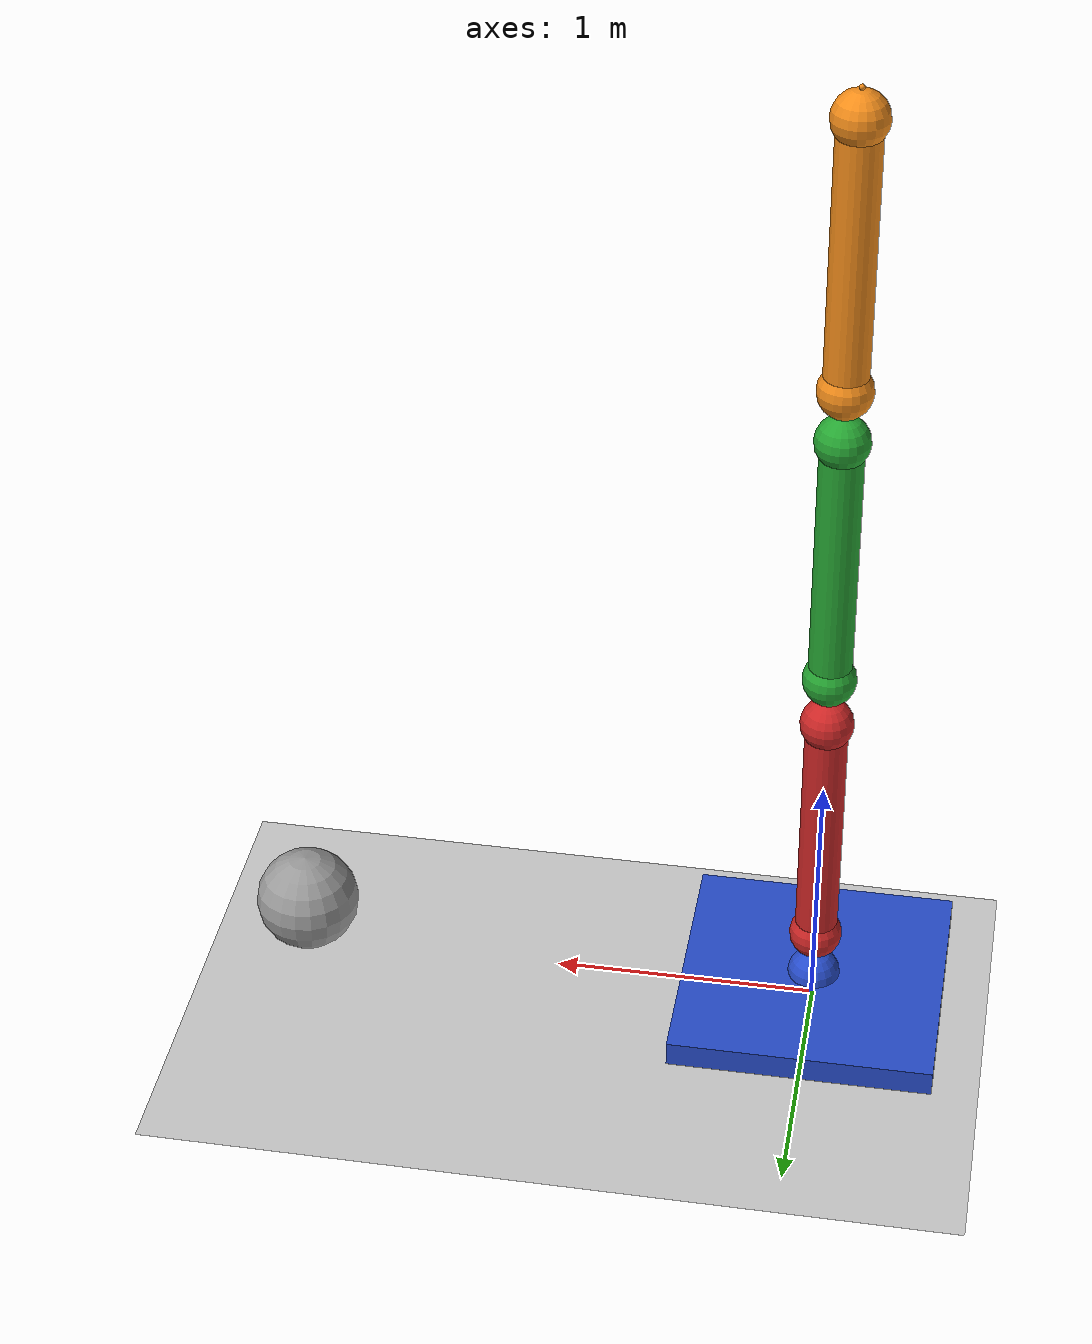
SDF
<?xml version="1.0" ?>
<sdf version="1.6">
  <world name="default">
    <include>
      <uri>model://ground_plane</uri>
    </include>

    <include>
      <uri>model://sun</uri>
    </include>

    <!-- reference to your plugin -->
    <plugin name="gazebo_tutorials" filename="libhello_world_plugin.so"/>

    <model name="6dof_arm">
      <pose>0 0 0.85 0 0 0</pose>
      <include>
       <uri>model://6dof_arm</uri>
      </include>

      <!-- Attach the plugin to this model -->
      <plugin name="6dof_arm_controller" filename="libhello_arm_plugin.so">
      </plugin>
    </model>

    <model name='unit_sphere_0'>
      <pose frame=''>2 0 0.2 0 0 0</pose>
      <link name='link'>
        <inertial>
          <mass>0.1</mass>
          <inertia>
            <ixx>0.1</ixx>
            <ixy>0</ixy>
            <ixz>0</ixz>
            <iyy>0.1</iyy>
            <iyz>0</iyz>
            <izz>0.1</izz>
          </inertia>
        </inertial>
        <collision name='collision'>
          <geometry>
            <sphere>
              <radius>0.2</radius>
            </sphere>
          </geometry>
          <max_contacts>10</max_contacts>
          <surface>
            <contact>
              <ode/>
            </contact>
            <bounce/>
            <friction>
              <torsional>
                <ode/>
              </torsional>
              <ode/>
            </friction>
          </surface>
        </collision>
        <visual name='visual'>
          <geometry>
            <sphere>
              <radius>0.2</radius>
            </sphere>
          </geometry>
          <material>
            <script>
              <name>Gazebo/Grey</name>
              <uri>file://media/materials/scripts/gazebo.material</uri>
            </script>
          </material>
        </visual>
        <self_collide>0</self_collide>
        <kinematic>0</kinematic>
        <gravity>1</gravity>
      </link>
    </model>

  </world>
</sdf>

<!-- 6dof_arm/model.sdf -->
<sdf version='1.6'>
  <model name='6dof_arm'>
    <link name='link_1'>
      <pose frame=''>-0 0 -0.7875 0 -0 0</pose>
      <inertial>
        <mass>150</mass>
        <inertia>
          <ixx>150</ixx>
          <ixy>0</ixy>
          <ixz>0</ixz>
          <iyy>150</iyy>
          <iyz>0</iyz>
          <izz>150</izz>
        </inertia>
        <pose frame=''>0 0 0 0 -0 0</pose>
      </inertial>
      <self_collide>1</self_collide>
      <kinematic>0</kinematic>
      <visual name='visual'>
        <pose frame=''>0 0 0 0 -0 0</pose>
        <geometry>
          <box>
            <size>1 1 0.1</size>
          </box>
        </geometry>
        <material>
          <lighting>1</lighting>
          <script>
            <uri>file://media/materials/scripts/gazebo.material</uri>
            <name>Gazebo/Blue</name>
          </script>
          <ambient>0 0 1 1</ambient>
          <diffuse>0.7 0.7 0.7 1</diffuse>
          <specular>0.01 0.01 0.01 1</specular>
          <emissive>0 0 0 1</emissive>
          <shader type='vertex'>
            <normal_map>__default__</normal_map>
          </shader>
        </material>
        <cast_shadows>1</cast_shadows>
        <transparency>0</transparency>
      </visual>
      <collision name='collision'>
        <laser_retro>0</laser_retro>
        <max_contacts>10</max_contacts>
        <pose frame=''>0 0 0 0 -0 0</pose>
        <geometry>
          <box>
            <size>1 1 0.1</size>
          </box>
        </geometry>
        <surface>
          <friction>
            <ode>
              <mu>1</mu>
              <mu2>1</mu2>
              <fdir1>0 0 0</fdir1>
              <slip1>0</slip1>
              <slip2>0</slip2>
            </ode>
            <torsional>
              <coefficient>1</coefficient>
              <patch_radius>0</patch_radius>
              <surface_radius>0</surface_radius>
              <use_patch_radius>1</use_patch_radius>
              <ode>
                <slip>0</slip>
              </ode>
            </torsional>
          </friction>
          <bounce>
            <restitution_coefficient>0</restitution_coefficient>
            <threshold>1e+06</threshold>
          </bounce>
          <contact>
            <collide_without_contact>0</collide_without_contact>
            <collide_without_contact_bitmask>1</collide_without_contact_bitmask>
            <collide_bitmask>1</collide_bitmask>
            <ode>
              <soft_cfm>0</soft_cfm>
              <soft_erp>0.2</soft_erp>
              <kp>1e+13</kp>
              <kd>1</kd>
              <max_vel>0.01</max_vel>
              <min_depth>0</min_depth>
            </ode>
            <bullet>
              <split_impulse>1</split_impulse>
              <split_impulse_penetration_threshold>-0.01</split_impulse_penetration_threshold>
              <soft_cfm>0</soft_cfm>
              <soft_erp>0.2</soft_erp>
              <kp>1e+13</kp>
              <kd>1</kd>
            </bullet>
          </contact>
        </surface>
      </collision>
    </link>
    <link name='link_3'>
      <pose frame=''>-0 -0 -0.5375 0 -0 0</pose>
      <inertial>
        <mass>0.1</mass>
        <inertia>
          <ixx>0.1</ixx>
          <ixy>0</ixy>
          <ixz>0</ixz>
          <iyy>0.1</iyy>
          <iyz>0</iyz>
          <izz>0.1</izz>
        </inertia>
        <pose frame=''>0 0 0 0 -0 0</pose>
      </inertial>
      <self_collide>1</self_collide>
      <kinematic>0</kinematic>
      <visual name='visual_1'>
        <pose frame=''>0 0 0.5 0 -0 0</pose>
        <geometry>
          <cylinder>
            <radius>0.08</radius>
            <length>1</length>
          </cylinder>
        </geometry>
        <material>
          <lighting>1</lighting>
          <script>
            <uri>file://media/materials/scripts/gazebo.material</uri>
            <name>Gazebo/Red</name>
          </script>
          <ambient>1 0 0 1</ambient>
          <diffuse>0.7 0.7 0.7 1</diffuse>
          <specular>0.01 0.01 0.01 1</specular>
          <emissive>0 0 0 1</emissive>
          <shader type='vertex'>
            <normal_map>__default__</normal_map>
          </shader>
        </material>
        <cast_shadows>1</cast_shadows>
        <transparency>0</transparency>
      </visual>
      <visual name='visual'>
        <pose frame=''>0 0 0 0 -0 0</pose>
        <geometry>
          <sphere>
            <radius>0.1</radius>
          </sphere>
        </geometry>
        <material>
          <lighting>1</lighting>
          <script>
            <uri>file://media/materials/scripts/gazebo.material</uri>
            <name>Gazebo/Red</name>
          </script>
          <ambient>1 0 0 1</ambient>
          <diffuse>0.7 0.7 0.7 1</diffuse>
          <specular>0.01 0.01 0.01 1</specular>
          <emissive>0 0 0 1</emissive>
          <shader type='vertex'>
            <normal_map>__default__</normal_map>
          </shader>
        </material>
        <cast_shadows>1</cast_shadows>
        <transparency>0</transparency>
      </visual>
      <collision name='collision_1'>
        <laser_retro>0</laser_retro>
        <max_contacts>10</max_contacts>
        <pose frame=''>0 0 0.5 0 -0 0</pose>
        <geometry>
          <cylinder>
            <radius>0.08</radius>
            <length>1</length>
          </cylinder>
        </geometry>
        <surface>
          <friction>
            <ode>
              <mu>1</mu>
              <mu2>1</mu2>
              <fdir1>0 0 0</fdir1>
              <slip1>0</slip1>
              <slip2>0</slip2>
            </ode>
            <torsional>
              <coefficient>1</coefficient>
              <patch_radius>0</patch_radius>
              <surface_radius>0</surface_radius>
              <use_patch_radius>1</use_patch_radius>
              <ode>
                <slip>0</slip>
              </ode>
            </torsional>
          </friction>
          <bounce>
            <restitution_coefficient>0</restitution_coefficient>
            <threshold>1e+06</threshold>
          </bounce>
          <contact>
            <collide_without_contact>0</collide_without_contact>
            <collide_without_contact_bitmask>1</collide_without_contact_bitmask>
            <collide_bitmask>1</collide_bitmask>
            <ode>
              <soft_cfm>0</soft_cfm>
              <soft_erp>0.2</soft_erp>
              <kp>1e+13</kp>
              <kd>1</kd>
              <max_vel>0.01</max_vel>
              <min_depth>0</min_depth>
            </ode>
            <bullet>
              <split_impulse>1</split_impulse>
              <split_impulse_penetration_threshold>-0.01</split_impulse_penetration_threshold>
              <soft_cfm>0</soft_cfm>
              <soft_erp>0.2</soft_erp>
              <kp>1e+13</kp>
              <kd>1</kd>
            </bullet>
          </contact>
        </surface>
      </collision>
      <collision name='collision'>
        <laser_retro>0</laser_retro>
        <max_contacts>10</max_contacts>
        <pose frame=''>0 0 0 0 -0 0</pose>
        <geometry>
          <sphere>
            <radius>0.1</radius>
          </sphere>
        </geometry>
        <surface>
          <friction>
            <ode>
              <mu>1</mu>
              <mu2>1</mu2>
              <fdir1>0 0 0</fdir1>
              <slip1>0</slip1>
              <slip2>0</slip2>
            </ode>
            <torsional>
              <coefficient>1</coefficient>
              <patch_radius>0</patch_radius>
              <surface_radius>0</surface_radius>
              <use_patch_radius>1</use_patch_radius>
              <ode>
                <slip>0</slip>
              </ode>
            </torsional>
          </friction>
          <bounce>
            <restitution_coefficient>0</restitution_coefficient>
            <threshold>1e+06</threshold>
          </bounce>
          <contact>
            <collide_without_contact>0</collide_without_contact>
            <collide_without_contact_bitmask>1</collide_without_contact_bitmask>
            <collide_bitmask>1</collide_bitmask>
            <ode>
              <soft_cfm>0</soft_cfm>
              <soft_erp>0.2</soft_erp>
              <kp>1e+13</kp>
              <kd>1</kd>
              <max_vel>0.01</max_vel>
              <min_depth>0</min_depth>
            </ode>
            <bullet>
              <split_impulse>1</split_impulse>
              <split_impulse_penetration_threshold>-0.01</split_impulse_penetration_threshold>
              <soft_cfm>0</soft_cfm>
              <soft_erp>0.2</soft_erp>
              <kp>1e+13</kp>
              <kd>1</kd>
            </bullet>
          </contact>
        </surface>
      </collision>
    </link>
    <link name='link_3_'>
      <pose frame=''>-0 0 -0.7375 0 -0 0</pose>
      <inertial>
        <mass>0.1</mass>
        <inertia>
          <ixx>0.1</ixx>
          <ixy>0</ixy>
          <ixz>0</ixz>
          <iyy>0.1</iyy>
          <iyz>0</iyz>
          <izz>0.1</izz>
        </inertia>
        <pose frame=''>0 0 0 0 -0 0</pose>
      </inertial>
      <self_collide>1</self_collide>
      <kinematic>0</kinematic>
      <visual name='visual'>
        <pose frame=''>0 0 0 0 -0 0</pose>
        <geometry>
          <sphere>
            <radius>0.1</radius>
          </sphere>
        </geometry>
        <material>
          <lighting>1</lighting>
          <script>
            <uri>file://media/materials/scripts/gazebo.material</uri>
            <name>Gazebo/Blue</name>
          </script>
          <ambient>0 0 1 1</ambient>
          <diffuse>0.7 0.7 0.7 1</diffuse>
          <specular>0.01 0.01 0.01 1</specular>
          <emissive>0 0 0 1</emissive>
          <shader type='vertex'>
            <normal_map>__default__</normal_map>
          </shader>
        </material>
        <cast_shadows>1</cast_shadows>
        <transparency>0</transparency>
      </visual>
      <collision name='collision'>
        <laser_retro>0</laser_retro>
        <max_contacts>10</max_contacts>
        <pose frame=''>0 0 0 0 -0 0</pose>
        <geometry>
          <sphere>
            <radius>0.1</radius>
          </sphere>
        </geometry>
        <surface>
          <friction>
            <ode>
              <mu>1</mu>
              <mu2>1</mu2>
              <fdir1>0 0 0</fdir1>
              <slip1>0</slip1>
              <slip2>0</slip2>
            </ode>
            <torsional>
              <coefficient>1</coefficient>
              <patch_radius>0</patch_radius>
              <surface_radius>0</surface_radius>
              <use_patch_radius>1</use_patch_radius>
              <ode>
                <slip>0</slip>
              </ode>
            </torsional>
          </friction>
          <bounce>
            <restitution_coefficient>0</restitution_coefficient>
            <threshold>1e+06</threshold>
          </bounce>
          <contact>
            <collide_without_contact>0</collide_without_contact>
            <collide_without_contact_bitmask>1</collide_without_contact_bitmask>
            <collide_bitmask>1</collide_bitmask>
            <ode>
              <soft_cfm>0</soft_cfm>
              <soft_erp>0.2</soft_erp>
              <kp>1e+13</kp>
              <kd>1</kd>
              <max_vel>0.01</max_vel>
              <min_depth>0</min_depth>
            </ode>
            <bullet>
              <split_impulse>1</split_impulse>
              <split_impulse_penetration_threshold>-0.01</split_impulse_penetration_threshold>
              <soft_cfm>0</soft_cfm>
              <soft_erp>0.2</soft_erp>
              <kp>1e+13</kp>
              <kd>1</kd>
            </bullet>
          </contact>
        </surface>
      </collision>
    </link>
    <link name='link_4'>
      <pose frame=''>-0 0 0.6625 0 -0 0</pose>
      <inertial>
        <mass>0.1</mass>
        <inertia>
          <ixx>0.1</ixx>
          <ixy>0</ixy>
          <ixz>0</ixz>
          <iyy>0.1</iyy>
          <iyz>0</iyz>
          <izz>0.1</izz>
        </inertia>
        <pose frame=''>0 0 0 0 -0 0</pose>
      </inertial>
      <self_collide>1</self_collide>
      <kinematic>0</kinematic>
      <visual name='visual'>
        <pose frame=''>0 0 0 0 -0 0</pose>
        <geometry>
          <sphere>
            <radius>0.1</radius>
          </sphere>
        </geometry>
        <material>
          <lighting>1</lighting>
          <script>
            <uri>file://media/materials/scripts/gazebo.material</uri>
            <name>Gazebo/Green</name>
          </script>
          <ambient>0 1 0 1</ambient>
          <diffuse>0.7 0.7 0.7 1</diffuse>
          <specular>0.01 0.01 0.01 1</specular>
          <emissive>0 0 0 1</emissive>
          <shader type='vertex'>
            <normal_map>__default__</normal_map>
          </shader>
        </material>
        <cast_shadows>1</cast_shadows>
        <transparency>0</transparency>
      </visual>
      <visual name='visual_1'>
        <pose frame=''>0 0 0.5 0 -0 0</pose>
        <geometry>
          <cylinder>
            <radius>0.08</radius>
            <length>1</length>
          </cylinder>
        </geometry>
        <material>
          <lighting>1</lighting>
          <script>
            <uri>file://media/materials/scripts/gazebo.material</uri>
            <name>Gazebo/Green</name>
          </script>
          <ambient>0 1 0 1</ambient>
          <diffuse>0.7 0.7 0.7 1</diffuse>
          <specular>0.01 0.01 0.01 1</specular>
          <emissive>0 0 0 1</emissive>
          <shader type='vertex'>
            <normal_map>__default__</normal_map>
          </shader>
        </material>
        <cast_shadows>1</cast_shadows>
        <transparency>0</transparency>
      </visual>
      <collision name='collision'>
        <laser_retro>0</laser_retro>
        <max_contacts>10</max_contacts>
        <pose frame=''>0 0 0 0 -0 0</pose>
        <geometry>
          <sphere>
            <radius>0.1</radius>
          </sphere>
        </geometry>
        <surface>
          <friction>
            <ode>
              <mu>1</mu>
              <mu2>1</mu2>
              <fdir1>0 0 0</fdir1>
              <slip1>0</slip1>
              <slip2>0</slip2>
            </ode>
            <torsional>
              <coefficient>1</coefficient>
              <patch_radius>0</patch_radius>
              <surface_radius>0</surface_radius>
              <use_patch_radius>1</use_patch_radius>
              <ode>
                <slip>0</slip>
              </ode>
            </torsional>
          </friction>
          <bounce>
            <restitution_coefficient>0</restitution_coefficient>
            <threshold>1e+06</threshold>
          </bounce>
          <contact>
            <collide_without_contact>0</collide_without_contact>
            <collide_without_contact_bitmask>1</collide_without_contact_bitmask>
            <collide_bitmask>1</collide_bitmask>
            <ode>
              <soft_cfm>0</soft_cfm>
              <soft_erp>0.2</soft_erp>
              <kp>1e+13</kp>
              <kd>1</kd>
              <max_vel>0.01</max_vel>
              <min_depth>0</min_depth>
            </ode>
            <bullet>
              <split_impulse>1</split_impulse>
              <split_impulse_penetration_threshold>-0.01</split_impulse_penetration_threshold>
              <soft_cfm>0</soft_cfm>
              <soft_erp>0.2</soft_erp>
              <kp>1e+13</kp>
              <kd>1</kd>
            </bullet>
          </contact>
        </surface>
      </collision>
      <collision name='collision_1'>
        <laser_retro>0</laser_retro>
        <max_contacts>10</max_contacts>
        <pose frame=''>0 0 0.5 0 -0 0</pose>
        <geometry>
          <cylinder>
            <radius>0.08</radius>
            <length>1</length>
          </cylinder>
        </geometry>
        <surface>
          <friction>
            <ode>
              <mu>1</mu>
              <mu2>1</mu2>
              <fdir1>0 0 0</fdir1>
              <slip1>0</slip1>
              <slip2>0</slip2>
            </ode>
            <torsional>
              <coefficient>1</coefficient>
              <patch_radius>0</patch_radius>
              <surface_radius>0</surface_radius>
              <use_patch_radius>1</use_patch_radius>
              <ode>
                <slip>0</slip>
              </ode>
            </torsional>
          </friction>
          <bounce>
            <restitution_coefficient>0</restitution_coefficient>
            <threshold>1e+06</threshold>
          </bounce>
          <contact>
            <collide_without_contact>0</collide_without_contact>
            <collide_without_contact_bitmask>1</collide_without_contact_bitmask>
            <collide_bitmask>1</collide_bitmask>
            <ode>
              <soft_cfm>0</soft_cfm>
              <soft_erp>0.2</soft_erp>
              <kp>1e+13</kp>
              <kd>1</kd>
              <max_vel>0.01</max_vel>
              <min_depth>0</min_depth>
            </ode>
            <bullet>
              <split_impulse>1</split_impulse>
              <split_impulse_penetration_threshold>-0.01</split_impulse_penetration_threshold>
              <soft_cfm>0</soft_cfm>
              <soft_erp>0.2</soft_erp>
              <kp>1e+13</kp>
              <kd>1</kd>
            </bullet>
          </contact>
        </surface>
      </collision>
    </link>
    <link name='link_4_'>
      <pose frame=''>-0 -0 0.4625 0 -0 0</pose>
      <inertial>
        <mass>0.1</mass>
        <inertia>
          <ixx>0.1</ixx>
          <ixy>0</ixy>
          <ixz>0</ixz>
          <iyy>0.1</iyy>
          <iyz>0</iyz>
          <izz>0.1</izz>
        </inertia>
        <pose frame=''>0 0 0 0 -0 0</pose>
      </inertial>
      <self_collide>1</self_collide>
      <kinematic>0</kinematic>
      <visual name='visual'>
        <pose frame=''>0 0 0 0 -0 0</pose>
        <geometry>
          <sphere>
            <radius>0.1</radius>
          </sphere>
        </geometry>
        <material>
          <lighting>1</lighting>
          <script>
            <uri>file://media/materials/scripts/gazebo.material</uri>
            <name>Gazebo/Red</name>
          </script>
          <ambient>1 0 0 1</ambient>
          <diffuse>0.7 0.7 0.7 1</diffuse>
          <specular>0.01 0.01 0.01 1</specular>
          <emissive>0 0 0 1</emissive>
          <shader type='vertex'>
            <normal_map>__default__</normal_map>
          </shader>
        </material>
        <cast_shadows>1</cast_shadows>
        <transparency>0</transparency>
      </visual>
      <collision name='collision'>
        <laser_retro>0</laser_retro>
        <max_contacts>10</max_contacts>
        <pose frame=''>0 0 0 0 -0 0</pose>
        <geometry>
          <sphere>
            <radius>0.1</radius>
          </sphere>
        </geometry>
        <surface>
          <friction>
            <ode>
              <mu>1</mu>
              <mu2>1</mu2>
              <fdir1>0 0 0</fdir1>
              <slip1>0</slip1>
              <slip2>0</slip2>
            </ode>
            <torsional>
              <coefficient>1</coefficient>
              <patch_radius>0</patch_radius>
              <surface_radius>0</surface_radius>
              <use_patch_radius>1</use_patch_radius>
              <ode>
                <slip>0</slip>
              </ode>
            </torsional>
          </friction>
          <bounce>
            <restitution_coefficient>0</restitution_coefficient>
            <threshold>1e+06</threshold>
          </bounce>
          <contact>
            <collide_without_contact>0</collide_without_contact>
            <collide_without_contact_bitmask>1</collide_without_contact_bitmask>
            <collide_bitmask>1</collide_bitmask>
            <ode>
              <soft_cfm>0</soft_cfm>
              <soft_erp>0.2</soft_erp>
              <kp>1e+13</kp>
              <kd>1</kd>
              <max_vel>0.01</max_vel>
              <min_depth>0</min_depth>
            </ode>
            <bullet>
              <split_impulse>1</split_impulse>
              <split_impulse_penetration_threshold>-0.01</split_impulse_penetration_threshold>
              <soft_cfm>0</soft_cfm>
              <soft_erp>0.2</soft_erp>
              <kp>1e+13</kp>
              <kd>1</kd>
            </bullet>
          </contact>
        </surface>
      </collision>
    </link>
    <link name='link_5'>
      <pose frame=''>-0 -0 1.8625 0 -0 0</pose>
      <inertial>
        <mass>0.1</mass>
        <inertia>
          <ixx>0.1</ixx>
          <ixy>0</ixy>
          <ixz>0</ixz>
          <iyy>0.1</iyy>
          <iyz>0</iyz>
          <izz>0.1</izz>
        </inertia>
        <pose frame=''>0 0 0 0 -0 0</pose>
      </inertial>
      <self_collide>1</self_collide>
      <kinematic>0</kinematic>
      <visual name='visual'>
        <pose frame=''>0 0 0 0 -0 0</pose>
        <geometry>
          <sphere>
            <radius>0.1</radius>
          </sphere>
        </geometry>
        <material>
          <lighting>1</lighting>
          <script>
            <uri>file://media/materials/scripts/gazebo.material</uri>
            <name>Gazebo/Orange</name>
          </script>
          <ambient>1 0.7 0 1</ambient>
          <diffuse>0.7 0.7 0.7 1</diffuse>
          <specular>0.01 0.01 0.01 1</specular>
          <emissive>0 0 0 1</emissive>
          <shader type='vertex'>
            <normal_map>__default__</normal_map>
          </shader>
        </material>
        <cast_shadows>1</cast_shadows>
        <transparency>0</transparency>
      </visual>
      <visual name='visual_2'>
        <pose frame=''>0 0 1 0 -0 0</pose>
        <geometry>
          <sphere>
            <radius>0.1</radius>
          </sphere>
        </geometry>
        <material>
          <lighting>1</lighting>
          <script>
            <uri>file://media/materials/scripts/gazebo.material</uri>
            <name>Gazebo/Orange</name>
          </script>
          <ambient>1 0.7 0 1</ambient>
          <diffuse>0.7 0.7 0.7 1</diffuse>
          <specular>0.01 0.01 0.01 1</specular>
          <emissive>0 0 0 1</emissive>
          <shader type='vertex'>
            <normal_map>__default__</normal_map>
          </shader>
        </material>
        <cast_shadows>1</cast_shadows>
        <transparency>0</transparency>
      </visual>
      <visual name='visual_1'>
        <pose frame=''>0 0 0.5 0 -0 0</pose>
        <geometry>
          <cylinder>
            <radius>0.08</radius>
            <length>1</length>
          </cylinder>
        </geometry>
        <material>
          <lighting>1</lighting>
          <script>
            <uri>file://media/materials/scripts/gazebo.material</uri>
            <name>Gazebo/Orange</name>
          </script>
          <ambient>1 0.7 0 1</ambient>
          <diffuse>0.7 0.7 0.7 1</diffuse>
          <specular>0.01 0.01 0.01 1</specular>
          <emissive>0 0 0 1</emissive>
          <shader type='vertex'>
            <normal_map>__default__</normal_map>
          </shader>
        </material>
        <cast_shadows>1</cast_shadows>
        <transparency>0</transparency>
      </visual>
      <collision name='collision'>
        <laser_retro>0</laser_retro>
        <max_contacts>10</max_contacts>
        <pose frame=''>0 0 0 0 -0 0</pose>
        <geometry>
          <sphere>
            <radius>0.1</radius>
          </sphere>
        </geometry>
        <surface>
          <friction>
            <ode>
              <mu>1</mu>
              <mu2>1</mu2>
              <fdir1>0 0 0</fdir1>
              <slip1>0</slip1>
              <slip2>0</slip2>
            </ode>
            <torsional>
              <coefficient>1</coefficient>
              <patch_radius>0</patch_radius>
              <surface_radius>0</surface_radius>
              <use_patch_radius>1</use_patch_radius>
              <ode>
                <slip>0</slip>
              </ode>
            </torsional>
          </friction>
          <bounce>
            <restitution_coefficient>0</restitution_coefficient>
            <threshold>1e+06</threshold>
          </bounce>
          <contact>
            <collide_without_contact>0</collide_without_contact>
            <collide_without_contact_bitmask>1</collide_without_contact_bitmask>
            <collide_bitmask>1</collide_bitmask>
            <ode>
              <soft_cfm>0</soft_cfm>
              <soft_erp>0.2</soft_erp>
              <kp>1e+13</kp>
              <kd>1</kd>
              <max_vel>0.01</max_vel>
              <min_depth>0</min_depth>
            </ode>
            <bullet>
              <split_impulse>1</split_impulse>
              <split_impulse_penetration_threshold>-0.01</split_impulse_penetration_threshold>
              <soft_cfm>0</soft_cfm>
              <soft_erp>0.2</soft_erp>
              <kp>1e+13</kp>
              <kd>1</kd>
            </bullet>
          </contact>
        </surface>
      </collision>
      <collision name='collision_1'>
        <laser_retro>0</laser_retro>
        <max_contacts>10</max_contacts>
        <pose frame=''>0 0 0.5 0 -0 0</pose>
        <geometry>
          <cylinder>
            <radius>0.08</radius>
            <length>1</length>
          </cylinder>
        </geometry>
        <surface>
          <friction>
            <ode>
              <mu>1</mu>
              <mu2>1</mu2>
              <fdir1>0 0 0</fdir1>
              <slip1>0</slip1>
              <slip2>0</slip2>
            </ode>
            <torsional>
              <coefficient>1</coefficient>
              <patch_radius>0</patch_radius>
              <surface_radius>0</surface_radius>
              <use_patch_radius>1</use_patch_radius>
              <ode>
                <slip>0</slip>
              </ode>
            </torsional>
          </friction>
          <bounce>
            <restitution_coefficient>0</restitution_coefficient>
            <threshold>1e+06</threshold>
          </bounce>
          <contact>
            <collide_without_contact>0</collide_without_contact>
            <collide_without_contact_bitmask>1</collide_without_contact_bitmask>
            <collide_bitmask>1</collide_bitmask>
            <ode>
              <soft_cfm>0</soft_cfm>
              <soft_erp>0.2</soft_erp>
              <kp>1e+13</kp>
              <kd>1</kd>
              <max_vel>0.01</max_vel>
              <min_depth>0</min_depth>
            </ode>
            <bullet>
              <split_impulse>1</split_impulse>
              <split_impulse_penetration_threshold>-0.01</split_impulse_penetration_threshold>
              <soft_cfm>0</soft_cfm>
              <soft_erp>0.2</soft_erp>
              <kp>1e+13</kp>
              <kd>1</kd>
            </bullet>
          </contact>
        </surface>
      </collision>
      <collision name='collision_2'>
        <laser_retro>0</laser_retro>
        <max_contacts>10</max_contacts>
        <pose frame=''>0 0 1 0 -0 0</pose>
        <geometry>
          <sphere>
            <radius>0.1</radius>
          </sphere>
        </geometry>
        <surface>
          <friction>
            <ode>
              <mu>1</mu>
              <mu2>1</mu2>
              <fdir1>0 0 0</fdir1>
              <slip1>0</slip1>
              <slip2>0</slip2>
            </ode>
            <torsional>
              <coefficient>1</coefficient>
              <patch_radius>0</patch_radius>
              <surface_radius>0</surface_radius>
              <use_patch_radius>1</use_patch_radius>
              <ode>
                <slip>0</slip>
              </ode>
            </torsional>
          </friction>
          <bounce>
            <restitution_coefficient>0</restitution_coefficient>
            <threshold>1e+06</threshold>
          </bounce>
          <contact>
            <collide_without_contact>0</collide_without_contact>
            <collide_without_contact_bitmask>1</collide_without_contact_bitmask>
            <collide_bitmask>1</collide_bitmask>
            <ode>
              <soft_cfm>0</soft_cfm>
              <soft_erp>0.2</soft_erp>
              <kp>1e+13</kp>
              <kd>1</kd>
              <max_vel>0.01</max_vel>
              <min_depth>0</min_depth>
            </ode>
            <bullet>
              <split_impulse>1</split_impulse>
              <split_impulse_penetration_threshold>-0.01</split_impulse_penetration_threshold>
              <soft_cfm>0</soft_cfm>
              <soft_erp>0.2</soft_erp>
              <kp>1e+13</kp>
              <kd>1</kd>
            </bullet>
          </contact>
        </surface>
      </collision>
    </link>
    <link name='link_5_'>
      <pose frame=''>0 0 1.6625 0 -0 0</pose>
      <inertial>
        <mass>0.1</mass>
        <inertia>
          <ixx>0.1</ixx>
          <ixy>0</ixy>
          <ixz>0</ixz>
          <iyy>0.1</iyy>
          <iyz>0</iyz>
          <izz>0.1</izz>
        </inertia>
        <pose frame=''>0 0 0 0 -0 0</pose>
      </inertial>
      <self_collide>1</self_collide>
      <kinematic>0</kinematic>
      <visual name='visual'>
        <pose frame=''>0 0 0 0 -0 0</pose>
        <geometry>
          <sphere>
            <radius>0.1</radius>
          </sphere>
        </geometry>
        <material>
          <lighting>1</lighting>
          <script>
            <uri>file://media/materials/scripts/gazebo.material</uri>
            <name>Gazebo/Green</name>
          </script>
          <ambient>0 1 0 1</ambient>
          <diffuse>0.7 0.7 0.7 1</diffuse>
          <specular>0.01 0.01 0.01 1</specular>
          <emissive>0 0 0 1</emissive>
          <shader type='vertex'>
            <normal_map>__default__</normal_map>
          </shader>
        </material>
        <cast_shadows>1</cast_shadows>
        <transparency>0</transparency>
      </visual>
      <collision name='collision'>
        <laser_retro>0</laser_retro>
        <max_contacts>10</max_contacts>
        <pose frame=''>0 0 0 0 -0 0</pose>
        <geometry>
          <sphere>
            <radius>0.1</radius>
          </sphere>
        </geometry>
        <surface>
          <friction>
            <ode>
              <mu>1</mu>
              <mu2>1</mu2>
              <fdir1>0 0 0</fdir1>
              <slip1>0</slip1>
              <slip2>0</slip2>
            </ode>
            <torsional>
              <coefficient>1</coefficient>
              <patch_radius>0</patch_radius>
              <surface_radius>0</surface_radius>
              <use_patch_radius>1</use_patch_radius>
              <ode>
                <slip>0</slip>
              </ode>
            </torsional>
          </friction>
          <bounce>
            <restitution_coefficient>0</restitution_coefficient>
            <threshold>1e+06</threshold>
          </bounce>
          <contact>
            <collide_without_contact>0</collide_without_contact>
            <collide_without_contact_bitmask>1</collide_without_contact_bitmask>
            <collide_bitmask>1</collide_bitmask>
            <ode>
              <soft_cfm>0</soft_cfm>
              <soft_erp>0.2</soft_erp>
              <kp>1e+13</kp>
              <kd>1</kd>
              <max_vel>0.01</max_vel>
              <min_depth>0</min_depth>
            </ode>
            <bullet>
              <split_impulse>1</split_impulse>
              <split_impulse_penetration_threshold>-0.01</split_impulse_penetration_threshold>
              <soft_cfm>0</soft_cfm>
              <soft_erp>0.2</soft_erp>
              <kp>1e+13</kp>
              <kd>1</kd>
            </bullet>
          </contact>
        </surface>
      </collision>
    </link>
    <link name='link_uc'>
      <pose frame=''>0 0 2.97 0 0 0</pose>
      <inertial>
        <mass>0.1</mass>
        <inertia>
          <ixx>0.1</ixx>
          <ixy>0</ixy>
          <ixz>0</ixz>
          <iyy>0.1</iyy>
          <iyz>0</iyz>
          <izz>0.1</izz>
        </inertia>
        <pose frame=''>0 0 0 0 -0 0</pose>
      </inertial>
      <self_collide>1</self_collide>
      <kinematic>0</kinematic>
      <visual name='visual'>
        <pose frame=''>0 0 0 0 -0 0</pose>
        <geometry>
          <sphere>
            <radius>0.01</radius>
          </sphere>
        </geometry>
        <material>
          <lighting>1</lighting>
          <script>
            <uri>file://media/materials/scripts/gazebo.material</uri>
            <name>Gazebo/Orange</name>
          </script>
          <ambient>1 0.7 0 1</ambient>
          <diffuse>0.7 0.7 0.7 1</diffuse>
          <specular>0.01 0.01 0.01 1</specular>
          <emissive>0 0 0 1</emissive>
          <shader type='vertex'>
            <normal_map>__default__</normal_map>
          </shader>
        </material>
        <cast_shadows>1</cast_shadows>
        <transparency>0</transparency>
      </visual>
      <collision name='collision'>
        <laser_retro>0</laser_retro>
        <max_contacts>10</max_contacts>
        <pose frame=''>0 0 0 0 -0 0</pose>
        <geometry>
          <sphere>
            <radius>0.01</radius>
          </sphere>
        </geometry>
        <surface>
          <friction>
            <ode>
              <mu>1</mu>
              <mu2>1</mu2>
              <fdir1>0 0 0</fdir1>
              <slip1>0</slip1>
              <slip2>0</slip2>
            </ode>
            <torsional>
              <coefficient>1</coefficient>
              <patch_radius>0</patch_radius>
              <surface_radius>0</surface_radius>
              <use_patch_radius>1</use_patch_radius>
              <ode>
                <slip>0</slip>
              </ode>
            </torsional>
          </friction>
          <bounce>
            <restitution_coefficient>0</restitution_coefficient>
            <threshold>1e+06</threshold>
          </bounce>
          <contact>
            <collide_without_contact>0</collide_without_contact>
            <collide_without_contact_bitmask>1</collide_without_contact_bitmask>
            <collide_bitmask>1</collide_bitmask>
            <ode>
              <soft_cfm>0</soft_cfm>
              <soft_erp>0.2</soft_erp>
              <kp>1e+13</kp>
              <kd>1</kd>
              <max_vel>0.01</max_vel>
              <min_depth>0</min_depth>
            </ode>
            <bullet>
              <split_impulse>1</split_impulse>
              <split_impulse_penetration_threshold>-0.01</split_impulse_penetration_threshold>
              <soft_cfm>0</soft_cfm>
              <soft_erp>0.2</soft_erp>
              <kp>1e+13</kp>
              <kd>1</kd>
            </bullet>
          </contact>
        </surface>
      </collision>
    </link>
    <joint name='base2' type='revolute'>
      <parent>link_3_</parent>
      <child>link_3</child>
      <pose frame=''>0 0 0 0 -0 0</pose>
      <axis>
        <xyz>0 1 0</xyz>
        <use_parent_model_frame>0</use_parent_model_frame>
        <limit>
          <lower>-1.57</lower>
          <upper>1.57</upper>
          <effort>1000000</effort>
          <velocity>-1</velocity>
        </limit>
        <dynamics>
          <spring_reference>0</spring_reference>
          <spring_stiffness>0</spring_stiffness>
          <damping>0</damping>
          <friction>0</friction>
        </dynamics>
      </axis>
      <physics>
        <ode>
          <limit>
            <cfm>0</cfm>
            <erp>0.2</erp>
          </limit>
          <suspension>
            <cfm>0</cfm>
            <erp>0.2</erp>
          </suspension>
        </ode>
      </physics>
    </joint>
    <joint name='base' type='revolute'>
      <parent>link_1</parent>
      <child>link_3_</child>
      <pose frame=''>0 0 0 0 -0 0</pose>
      <axis>
        <xyz>1 0 0</xyz>
        <use_parent_model_frame>0</use_parent_model_frame>
        <limit>
          <lower>-1</lower>
          <upper>1</upper>
          <effort>1000000</effort>
          <velocity>-1</velocity>
        </limit>
        <dynamics>
          <spring_reference>0</spring_reference>
          <spring_stiffness>0</spring_stiffness>
          <damping>0</damping>
          <friction>0</friction>
        </dynamics>
      </axis>
      <physics>
        <ode>
          <limit>
            <cfm>0</cfm>
            <erp>0.2</erp>
          </limit>
          <suspension>
            <cfm>0</cfm>
            <erp>0.2</erp>
          </suspension>
        </ode>
      </physics>
    </joint>
    <joint name='elbow2' type='revolute'>
      <parent>link_5_</parent>
      <child>link_5</child>
      <pose frame=''>0 0 0 0 -0 0</pose>
      <axis>
        <xyz>0 1 0</xyz>
        <use_parent_model_frame>0</use_parent_model_frame>
        <limit>
          <lower>-1.57</lower>
          <upper>1.57</upper>
          <effort>1000000</effort>
          <velocity>-1</velocity>
        </limit>
        <dynamics>
          <spring_reference>0</spring_reference>
          <spring_stiffness>0</spring_stiffness>
          <damping>0</damping>
          <friction>0</friction>
        </dynamics>
      </axis>
      <physics>
        <ode>
          <limit>
            <cfm>0</cfm>
            <erp>0.2</erp>
          </limit>
          <suspension>
            <cfm>0</cfm>
            <erp>0.2</erp>
          </suspension>
        </ode>
      </physics>
    </joint>
    <joint name='elbow' type='revolute'>
      <parent>link_4</parent>
      <child>link_5_</child>
      <pose frame=''>0 0 0 0 -0 0</pose>
      <axis>
        <xyz>1 0 0</xyz>
        <use_parent_model_frame>0</use_parent_model_frame>
        <limit>
          <lower>-1.57</lower>
          <upper>1.57</upper>
          <effort>1000000</effort>
          <velocity>-1</velocity>
        </limit>
        <dynamics>
          <spring_reference>0</spring_reference>
          <spring_stiffness>0</spring_stiffness>
          <damping>0</damping>
          <friction>0</friction>
        </dynamics>
      </axis>
      <physics>
        <ode>
          <limit>
            <cfm>0</cfm>
            <erp>0.2</erp>
          </limit>
          <suspension>
            <cfm>0</cfm>
            <erp>0.2</erp>
          </suspension>
        </ode>
      </physics>
    </joint>
    <joint name='shoulder2' type='revolute'>
      <parent>link_4_</parent>
      <child>link_4</child>
      <pose frame=''>0 0 0 0 -0 0</pose>
      <axis>
        <xyz>0 1 0</xyz>
        <use_parent_model_frame>0</use_parent_model_frame>
        <limit>
          <lower>-1.57</lower>
          <upper>1.57</upper>
          <effort>1000000</effort>
          <velocity>-1</velocity>
        </limit>
        <dynamics>
          <spring_reference>0</spring_reference>
          <spring_stiffness>0</spring_stiffness>
          <damping>0</damping>
          <friction>0</friction>
        </dynamics>
      </axis>
      <physics>
        <ode>
          <limit>
            <cfm>0</cfm>
            <erp>0.2</erp>
          </limit>
          <suspension>
            <cfm>0</cfm>
            <erp>0.2</erp>
          </suspension>
        </ode>
      </physics>
    </joint>
    <joint name='shoulder' type='revolute'>
      <parent>link_3</parent>
      <child>link_4_</child>
      <pose frame=''>0 0 0 0 -0 0</pose>
      <axis>
        <xyz>1 0 0</xyz>
        <use_parent_model_frame>0</use_parent_model_frame>
        <limit>
          <lower>-1.57</lower>
          <upper>1.57</upper>
          <effort>1000000</effort>
          <velocity>-1</velocity>
        </limit>
        <dynamics>
          <spring_reference>0</spring_reference>
          <spring_stiffness>0</spring_stiffness>
          <damping>0</damping>
          <friction>0</friction>
        </dynamics>
      </axis>
      <physics>
        <ode>
          <limit>
            <cfm>0</cfm>
            <erp>0.2</erp>
          </limit>
          <suspension>
            <cfm>0</cfm>
            <erp>0.2</erp>
          </suspension>
        </ode>
      </physics>
    </joint>
    <joint name='ucjoint' type='fixed'>
      <parent>link_5</parent>
      <child>link_uc</child>
      <pose frame=''>0 0 0 0 0 0</pose>
      <physics>
        <ode>
          <limit>
            <cfm>0</cfm>
            <erp>0.2</erp>
          </limit>
          <suspension>
            <cfm>0</cfm>
            <erp>0.2</erp>
          </suspension>
        </ode>
      </physics>
    </joint>
    <static>0</static>
    <allow_auto_disable>1</allow_auto_disable>
  </model>
</sdf>
